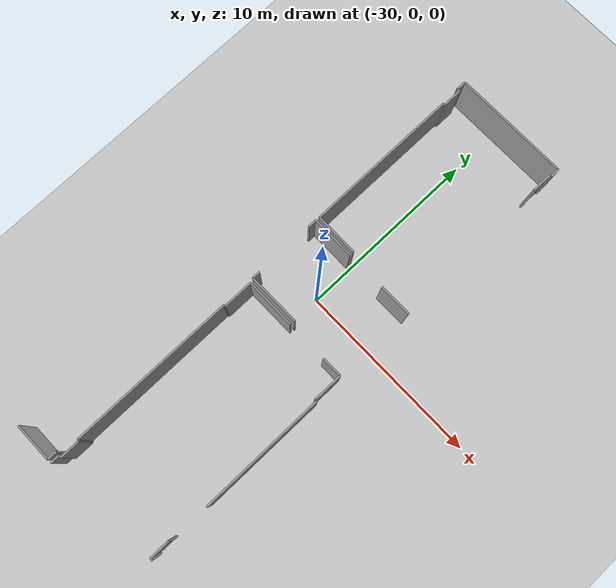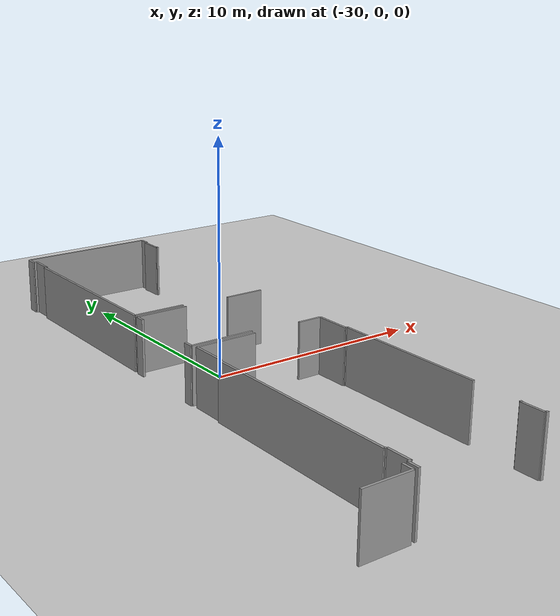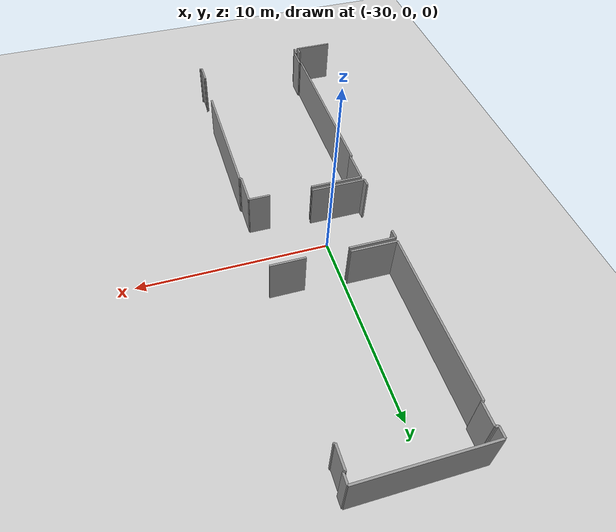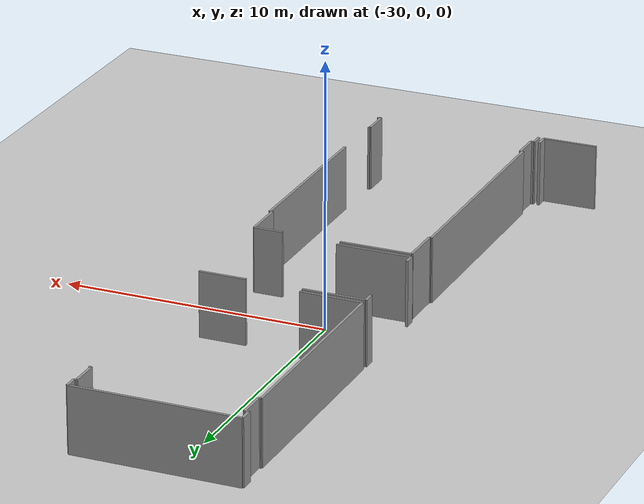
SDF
<sdf version="1.6">
 <world name="default">
  <model name="ground_plane">
   <static>1</static>
   <link name="link">
    <collision name="collision">
     <geometry><plane><normal>0 0 1</normal><size>100 100</size></plane></geometry>
     <surface><friction><ode><mu>100</mu><mu2>50</mu2></ode></friction></surface>
    </collision>
    <visual name="visual">
     <cast_shadows>0</cast_shadows>
     <geometry><plane><normal>0 0 1</normal><size>100 100</size></plane></geometry>
     <material>
      <script><uri>file://media/materials/scripts/gazebo.material</uri><name>Gazebo/Grey</name></script>
     </material>
    </visual>
   </link>
  </model>
  <model name="0510040946_A-40">
   <static>1</static>
   <link name="Wall_29">
    <collision name="Wall_29_Collision">
     <geometry><box><size>0.491195140047 0.1 2.5</size></box></geometry>
     <pose>0.245597570024 0 1.25 0 0 0</pose>
    </collision>
    <visual name="Wall_29_Visual">
     <pose>0.245597570024 0 1.25 0 0 0</pose>
     <geometry><box><size>0.491195140047 0.1 2.5</size></box></geometry>
     <material>
      <script><uri>file://media/materials/scripts/gazebo.material</uri><name>Gazebo/Grey</name></script>
      <ambient>1 1 1 1</ambient>
     </material>
    </visual>
    <pose>25.5995992314 -26.1796990431 0 0 0 -1.57079632679</pose>
   </link>
   <link name="Wall_30">
    <collision name="Wall_30_Collision">
     <geometry><box><size>2.06928476762 0.1 2.5</size></box></geometry>
     <pose>1.03464238381 0 1.25 0 0 0</pose>
    </collision>
    <visual name="Wall_30_Visual">
     <pose>1.03464238381 0 1.25 0 0 0</pose>
     <geometry><box><size>2.06928476762 0.1 2.5</size></box></geometry>
     <material>
      <script><uri>file://media/materials/scripts/gazebo.material</uri><name>Gazebo/Grey</name></script>
      <ambient>1 1 1 1</ambient>
     </material>
    </visual>
    <pose>25.5995992314 -26.6708941831 0 0 0 3.14159265359</pose>
   </link>
   <link name="Wall_34">
    <collision name="Wall_34_Collision">
     <geometry><box><size>0.419031433699 0.1 2.5</size></box></geometry>
     <pose>0.209515716849 0 1.25 0 0 0</pose>
    </collision>
    <visual name="Wall_34_Visual">
     <pose>0.209515716849 0 1.25 0 0 0</pose>
     <geometry><box><size>0.419031433699 0.1 2.5</size></box></geometry>
     <material>
      <script><uri>file://media/materials/scripts/gazebo.material</uri><name>Gazebo/Grey</name></script>
      <ambient>1 1 1 1</ambient>
     </material>
    </visual>
    <pose>25.8424700533 -14.3075645066 0 0 0 1.57079632679</pose>
   </link>
   <link name="Wall_35">
    <collision name="Wall_35_Collision">
     <geometry><box><size>0.452132887753 0.1 2.5</size></box></geometry>
     <pose>0.226066443877 0 1.25 0 0 0</pose>
    </collision>
    <visual name="Wall_35_Visual">
     <pose>0.226066443877 0 1.25 0 0 0</pose>
     <geometry><box><size>0.452132887753 0.1 2.5</size></box></geometry>
     <material>
      <script><uri>file://media/materials/scripts/gazebo.material</uri><name>Gazebo/Grey</name></script>
      <ambient>1 1 1 1</ambient>
     </material>
    </visual>
    <pose>25.8424700533 -10.6792139356 0 0 0 1.57079632679</pose>
   </link>
   <link name="Wall_36">
    <collision name="Wall_36_Collision">
     <geometry><box><size>2.35996880093 0.1 2.5</size></box></geometry>
     <pose>1.17998440046 0 1.25 0 0 0</pose>
    </collision>
    <visual name="Wall_36_Visual">
     <pose>1.17998440046 0 1.25 0 0 0</pose>
     <geometry><box><size>2.35996880093 0.1 2.5</size></box></geometry>
     <material>
      <script><uri>file://media/materials/scripts/gazebo.material</uri><name>Gazebo/Grey</name></script>
      <ambient>1 1 1 1</ambient>
     </material>
    </visual>
    <pose>25.8424700533 -10.2270810478 0 0 0 0.0</pose>
   </link>
   <link name="Wall_37">
    <collision name="Wall_37_Collision">
     <geometry><box><size>1.78189819718 0.1 2.5</size></box></geometry>
     <pose>0.890949098588 0 1.25 0 0 0</pose>
    </collision>
    <visual name="Wall_37_Visual">
     <pose>0.890949098588 0 1.25 0 0 0</pose>
     <geometry><box><size>1.78189819718 0.1 2.5</size></box></geometry>
     <material>
      <script><uri>file://media/materials/scripts/gazebo.material</uri><name>Gazebo/Grey</name></script>
      <ambient>1 1 1 1</ambient>
     </material>
    </visual>
    <pose>30.3195368333 -10.2270810478 0 0 0 0.0</pose>
   </link>
   <link name="Wall_58">
    <collision name="Wall_58_Collision">
     <geometry><box><size>2.84393694933 0.1 2.5</size></box></geometry>
     <pose>1.42196847466 0 1.25 0 0 0</pose>
    </collision>
    <visual name="Wall_58_Visual">
     <pose>1.42196847466 0 1.25 0 0 0</pose>
     <geometry><box><size>2.84393694933 0.1 2.5</size></box></geometry>
     <material>
      <script><uri>file://media/materials/scripts/gazebo.material</uri><name>Gazebo/Grey</name></script>
      <ambient>1 1 1 1</ambient>
     </material>
    </visual>
    <pose>28.6864049411 -14.3041402183 0 0 0 -3.1403885871</pose>
   </link>
   <link name="Wall_59">
    <collision name="Wall_59_Collision">
     <geometry><box><size>8.41030583968 0.1 2.5</size></box></geometry>
     <pose>4.20515291984 0 1.25 0 0 0</pose>
    </collision>
    <visual name="Wall_59_Visual">
     <pose>4.20515291984 0 1.25 0 0 0</pose>
     <geometry><box><size>8.41030583968 0.1 2.5</size></box></geometry>
     <material>
      <script><uri>file://media/materials/scripts/gazebo.material</uri><name>Gazebo/Grey</name></script>
      <ambient>1 1 1 1</ambient>
     </material>
    </visual>
    <pose>25.8633962599 -9.99549769495 0 0 0 1.57079632679</pose>
   </link>
   <link name="Wall_60">
    <collision name="Wall_60_Collision">
     <geometry><box><size>0.0967678522737 0.1 2.5</size></box></geometry>
     <pose>0.0483839261368 0 1.25 0 0 0</pose>
    </collision>
    <visual name="Wall_60_Visual">
     <pose>0.0483839261368 0 1.25 0 0 0</pose>
     <geometry><box><size>0.0967678522737 0.1 2.5</size></box></geometry>
     <material>
      <script><uri>file://media/materials/scripts/gazebo.material</uri><name>Gazebo/Grey</name></script>
      <ambient>1 1 1 1</ambient>
     </material>
    </visual>
    <pose>25.8633962599 -1.58519185527 0 0 0 0.0</pose>
   </link>
   <link name="Wall_61">
    <collision name="Wall_61_Collision">
     <geometry><box><size>1.06216351611 0.1 2.5</size></box></geometry>
     <pose>0.531081758055 0 1.25 0 0 0</pose>
    </collision>
    <visual name="Wall_61_Visual">
     <pose>0.531081758055 0 1.25 0 0 0</pose>
     <geometry><box><size>1.06216351611 0.1 2.5</size></box></geometry>
     <material>
      <script><uri>file://media/materials/scripts/gazebo.material</uri><name>Gazebo/Grey</name></script>
      <ambient>1 1 1 1</ambient>
     </material>
    </visual>
    <pose>25.9601641122 -1.58519185527 0 0 0 1.57079632679</pose>
   </link>
   <link name="Wall_62">
    <collision name="Wall_62_Collision">
     <geometry><box><size>0.150541861925 0.1 2.5</size></box></geometry>
     <pose>0.0752709309625 0 1.25 0 0 0</pose>
    </collision>
    <visual name="Wall_62_Visual">
     <pose>0.0752709309625 0 1.25 0 0 0</pose>
     <geometry><box><size>0.150541861925 0.1 2.5</size></box></geometry>
     <material>
      <script><uri>file://media/materials/scripts/gazebo.material</uri><name>Gazebo/Grey</name></script>
      <ambient>1 1 1 1</ambient>
     </material>
    </visual>
    <pose>25.9601641122 -0.523028339157 0 0 0 3.14159265359</pose>
   </link>
   <link name="Wall_63">
    <collision name="Wall_63_Collision">
     <geometry><box><size>0.514150554544 0.1 2.5</size></box></geometry>
     <pose>0.257075277272 0 1.25 0 0 0</pose>
    </collision>
    <visual name="Wall_63_Visual">
     <pose>0.257075277272 0 1.25 0 0 0</pose>
     <geometry><box><size>0.514150554544 0.1 2.5</size></box></geometry>
     <material>
      <script><uri>file://media/materials/scripts/gazebo.material</uri><name>Gazebo/Grey</name></script>
      <ambient>1 1 1 1</ambient>
     </material>
    </visual>
    <pose>25.8096222503 -0.523028339157 0 0 0 1.57079632679</pose>
   </link>
   <link name="Wall_64">
    <collision name="Wall_64_Collision">
     <geometry><box><size>6.26048688307 0.1 2.5</size></box></geometry>
     <pose>3.13024344154 0 1.25 0 0 0</pose>
    </collision>
    <visual name="Wall_64_Visual">
     <pose>3.13024344154 0 1.25 0 0 0</pose>
     <geometry><box><size>6.26048688307 0.1 2.5</size></box></geometry>
     <material>
      <script><uri>file://media/materials/scripts/gazebo.material</uri><name>Gazebo/Grey</name></script>
      <ambient>1 1 1 1</ambient>
     </material>
    </visual>
    <pose>25.8096222503 -0.00887778461226 0 0 0 0.0</pose>
   </link>
   <link name="Wall_65">
    <collision name="Wall_65_Collision">
     <geometry><box><size>0.489165932136 0.1 2.5</size></box></geometry>
     <pose>0.244582966068 0 1.25 0 0 0</pose>
    </collision>
    <visual name="Wall_65_Visual">
     <pose>0.244582966068 0 1.25 0 0 0</pose>
     <geometry><box><size>0.489165932136 0.1 2.5</size></box></geometry>
     <material>
      <script><uri>file://media/materials/scripts/gazebo.material</uri><name>Gazebo/Grey</name></script>
      <ambient>1 1 1 1</ambient>
     </material>
    </visual>
    <pose>32.0701091333 -0.00887778461226 0 0 0 -1.57079632679</pose>
   </link>
   <link name="Wall_66">
    <collision name="Wall_66_Collision">
     <geometry><box><size>0.0909338795285 0.1 2.5</size></box></geometry>
     <pose>0.0454669397642 0 1.25 0 0 0</pose>
    </collision>
    <visual name="Wall_66_Visual">
     <pose>0.0454669397642 0 1.25 0 0 0</pose>
     <geometry><box><size>0.0909338795285 0.1 2.5</size></box></geometry>
     <material>
      <script><uri>file://media/materials/scripts/gazebo.material</uri><name>Gazebo/Grey</name></script>
      <ambient>1 1 1 1</ambient>
     </material>
    </visual>
    <pose>32.0701091333 -0.498043716748 0 0 0 3.14159265359</pose>
   </link>
   <link name="Wall_67">
    <collision name="Wall_67_Collision">
     <geometry><box><size>1.07522654204 0.1 2.5</size></box></geometry>
     <pose>0.53761327102 0 1.25 0 0 0</pose>
    </collision>
    <visual name="Wall_67_Visual">
     <pose>0.53761327102 0 1.25 0 0 0</pose>
     <geometry><box><size>1.07522654204 0.1 2.5</size></box></geometry>
     <material>
      <script><uri>file://media/materials/scripts/gazebo.material</uri><name>Gazebo/Grey</name></script>
      <ambient>1 1 1 1</ambient>
     </material>
    </visual>
    <pose>31.9791752538 -0.498043716748 0 0 0 -1.57079632679</pose>
   </link>
   <link name="Wall_68">
    <collision name="Wall_68_Collision">
     <geometry><box><size>0.0909338795285 0.1 2.5</size></box></geometry>
     <pose>0.0454669397642 0 1.25 0 0 0</pose>
    </collision>
    <visual name="Wall_68_Visual">
     <pose>0.0454669397642 0 1.25 0 0 0</pose>
     <geometry><box><size>0.0909338795285 0.1 2.5</size></box></geometry>
     <material>
      <script><uri>file://media/materials/scripts/gazebo.material</uri><name>Gazebo/Grey</name></script>
      <ambient>1 1 1 1</ambient>
     </material>
    </visual>
    <pose>31.9791752538 -1.57327025879 0 0 0 0.0</pose>
   </link>
   <link name="Wall_71">
    <collision name="Wall_71_Collision">
     <geometry><box><size>2.34049136573 0.1 2.5</size></box></geometry>
     <pose>1.17024568287 0 1.25 0 0 0</pose>
    </collision>
    <visual name="Wall_71_Visual">
     <pose>1.17024568287 0 1.25 0 0 0</pose>
     <geometry><box><size>2.34049136573 0.1 2.5</size></box></geometry>
     <material>
      <script><uri>file://media/materials/scripts/gazebo.material</uri><name>Gazebo/Grey</name></script>
      <ambient>1 1 1 1</ambient>
     </material>
    </visual>
    <pose>28.2038339347 -10.0113508818 0 0 0 3.13481915796</pose>
   </link>
   <link name="Wall_72">
    <collision name="Wall_72_Collision">
     <geometry><box><size>0.488912281147 0.1 2.5</size></box></geometry>
     <pose>0.244456140573 0 1.25 0 0 0</pose>
    </collision>
    <visual name="Wall_72_Visual">
     <pose>0.244456140573 0 1.25 0 0 0</pose>
     <geometry><box><size>0.488912281147 0.1 2.5</size></box></geometry>
     <material>
      <script><uri>file://media/materials/scripts/gazebo.material</uri><name>Gazebo/Grey</name></script>
      <ambient>1 1 1 1</ambient>
     </material>
    </visual>
    <pose>25.8145684445 -26.6807865717 0 0 0 1.57079632679</pose>
   </link>
   <link name="Wall_73">
    <collision name="Wall_73_Collision">
     <geometry><box><size>0.126825494461 0.1 2.5</size></box></geometry>
     <pose>0.0634127472304 0 1.25 0 0 0</pose>
    </collision>
    <visual name="Wall_73_Visual">
     <pose>0.0634127472304 0 1.25 0 0 0</pose>
     <geometry><box><size>0.126825494461 0.1 2.5</size></box></geometry>
     <material>
      <script><uri>file://media/materials/scripts/gazebo.material</uri><name>Gazebo/Grey</name></script>
      <ambient>1 1 1 1</ambient>
     </material>
    </visual>
    <pose>25.8145684445 -26.1918742906 0 0 0 0.0</pose>
   </link>
   <link name="Wall_74">
    <collision name="Wall_74_Collision">
     <geometry><box><size>1.06267081809 0.1 2.5</size></box></geometry>
     <pose>0.531335409044 0 1.25 0 0 0</pose>
    </collision>
    <visual name="Wall_74_Visual">
     <pose>0.531335409044 0 1.25 0 0 0</pose>
     <geometry><box><size>1.06267081809 0.1 2.5</size></box></geometry>
     <material>
      <script><uri>file://media/materials/scripts/gazebo.material</uri><name>Gazebo/Grey</name></script>
      <ambient>1 1 1 1</ambient>
     </material>
    </visual>
    <pose>25.941393939 -26.1918742906 0 0 0 1.57079632679</pose>
   </link>
   <link name="Wall_75">
    <collision name="Wall_75_Collision">
     <geometry><box><size>0.0877632421669 0.1 2.5</size></box></geometry>
     <pose>0.0438816210835 0 1.25 0 0 0</pose>
    </collision>
    <visual name="Wall_75_Visual">
     <pose>0.0438816210835 0 1.25 0 0 0</pose>
     <geometry><box><size>0.0877632421669 0.1 2.5</size></box></geometry>
     <material>
      <script><uri>file://media/materials/scripts/gazebo.material</uri><name>Gazebo/Grey</name></script>
      <ambient>1 1 1 1</ambient>
     </material>
    </visual>
    <pose>25.941393939 -25.1292034725 0 0 0 3.14159265359</pose>
   </link>
   <link name="Wall_76">
    <collision name="Wall_76_Collision">
     <geometry><box><size>8.96288451905 0.1 2.5</size></box></geometry>
     <pose>4.48144225952 0 1.25 0 0 0</pose>
    </collision>
    <visual name="Wall_76_Visual">
     <pose>4.48144225952 0 1.25 0 0 0</pose>
     <geometry><box><size>8.96288451905 0.1 2.5</size></box></geometry>
     <material>
      <script><uri>file://media/materials/scripts/gazebo.material</uri><name>Gazebo/Grey</name></script>
      <ambient>1 1 1 1</ambient>
     </material>
    </visual>
    <pose>25.8536306968 -25.1292034725 0 0 0 1.57079632679</pose>
   </link>
   <link name="Wall_77">
    <collision name="Wall_77_Collision">
     <geometry><box><size>0.0814219674439 0.1 2.5</size></box></geometry>
     <pose>0.0407109837219 0 1.25 0 0 0</pose>
    </collision>
    <visual name="Wall_77_Visual">
     <pose>0.0407109837219 0 1.25 0 0 0</pose>
     <geometry><box><size>0.0814219674439 0.1 2.5</size></box></geometry>
     <material>
      <script><uri>file://media/materials/scripts/gazebo.material</uri><name>Gazebo/Grey</name></script>
      <ambient>1 1 1 1</ambient>
     </material>
    </visual>
    <pose>25.8536306968 -16.1663189534 0 0 0 0.0</pose>
   </link>
   <link name="Wall_78">
    <collision name="Wall_78_Collision">
     <geometry><box><size>1.61562997394 0.1 2.5</size></box></geometry>
     <pose>0.807814986969 0 1.25 0 0 0</pose>
    </collision>
    <visual name="Wall_78_Visual">
     <pose>0.807814986969 0 1.25 0 0 0</pose>
     <geometry><box><size>1.61562997394 0.1 2.5</size></box></geometry>
     <material>
      <script><uri>file://media/materials/scripts/gazebo.material</uri><name>Gazebo/Grey</name></script>
      <ambient>1 1 1 1</ambient>
     </material>
    </visual>
    <pose>25.9350526643 -16.1663189534 0 0 0 1.57079632679</pose>
   </link>
   <link name="Wall_79">
    <collision name="Wall_79_Collision">
     <geometry><box><size>2.71939225223 0.1 2.5</size></box></geometry>
     <pose>1.35969612612 0 1.25 0 0 0</pose>
    </collision>
    <visual name="Wall_79_Visual">
     <pose>1.35969612612 0 1.25 0 0 0</pose>
     <geometry><box><size>2.71939225223 0.1 2.5</size></box></geometry>
     <material>
      <script><uri>file://media/materials/scripts/gazebo.material</uri><name>Gazebo/Grey</name></script>
      <ambient>1 1 1 1</ambient>
     </material>
    </visual>
    <pose>25.9350526643 -14.5506889795 0 0 0 0.0</pose>
   </link>
   <link name="Wall_80">
    <collision name="Wall_80_Collision">
     <geometry><box><size>1.10274767434 0.1 2.5</size></box></geometry>
     <pose>0.551373837169 0 1.25 0 0 0</pose>
    </collision>
    <visual name="Wall_80_Visual">
     <pose>0.551373837169 0 1.25 0 0 0</pose>
     <geometry><box><size>1.10274767434 0.1 2.5</size></box></geometry>
     <material>
      <script><uri>file://media/materials/scripts/gazebo.material</uri><name>Gazebo/Grey</name></script>
      <ambient>1 1 1 1</ambient>
     </material>
    </visual>
    <pose>30.8560086749 -14.5506889795 0 0 0 0.0</pose>
   </link>
   <link name="Wall_81">
    <collision name="Wall_81_Collision">
     <geometry><box><size>1.57948470802 0.1 2.5</size></box></geometry>
     <pose>0.789742354008 0 1.25 0 0 0</pose>
    </collision>
    <visual name="Wall_81_Visual">
     <pose>0.789742354008 0 1.25 0 0 0</pose>
     <geometry><box><size>1.57948470802 0.1 2.5</size></box></geometry>
     <material>
      <script><uri>file://media/materials/scripts/gazebo.material</uri><name>Gazebo/Grey</name></script>
      <ambient>1 1 1 1</ambient>
     </material>
    </visual>
    <pose>31.9587563492 -14.5506889795 0 0 0 -1.57079632679</pose>
   </link>
   <link name="Wall_82">
    <collision name="Wall_82_Collision">
     <geometry><box><size>0.0925826109565 0.1 2.5</size></box></geometry>
     <pose>0.0462913054782 0 1.25 0 0 0</pose>
    </collision>
    <visual name="Wall_82_Visual">
     <pose>0.0462913054782 0 1.25 0 0 0</pose>
     <geometry><box><size>0.0925826109565 0.1 2.5</size></box></geometry>
     <material>
      <script><uri>file://media/materials/scripts/gazebo.material</uri><name>Gazebo/Grey</name></script>
      <ambient>1 1 1 1</ambient>
     </material>
    </visual>
    <pose>31.9587563492 -16.1301736875 0 0 0 0.0</pose>
   </link>
   <link name="Wall_83">
    <collision name="Wall_83_Collision">
     <geometry><box><size>6.788841893 0.1 2.5</size></box></geometry>
     <pose>3.3944209465 0 1.25 0 0 0</pose>
    </collision>
    <visual name="Wall_83_Visual">
     <pose>3.3944209465 0 1.25 0 0 0</pose>
     <geometry><box><size>6.788841893 0.1 2.5</size></box></geometry>
     <material>
      <script><uri>file://media/materials/scripts/gazebo.material</uri><name>Gazebo/Grey</name></script>
      <ambient>1 1 1 1</ambient>
     </material>
    </visual>
    <pose>32.0513389602 -16.1301736875 0 0 0 -1.57079632679</pose>
   </link>
   <link name="Wall_84">
    <collision name="Wall_84_Collision">
     <geometry><box><size>0.0801537124993 0.1 2.5</size></box></geometry>
     <pose>0.0400768562496 0 1.25 0 0 0</pose>
    </collision>
    <visual name="Wall_84_Visual">
     <pose>0.0400768562496 0 1.25 0 0 0</pose>
     <geometry><box><size>0.0801537124993 0.1 2.5</size></box></geometry>
     <material>
      <script><uri>file://media/materials/scripts/gazebo.material</uri><name>Gazebo/Grey</name></script>
      <ambient>1 1 1 1</ambient>
     </material>
    </visual>
    <pose>32.0513389602 -25.1136039367 0 0 0 3.14159265359</pose>
   </link>
   <link name="Wall_85">
    <collision name="Wall_85_Collision">
     <geometry><box><size>1.05632954336 0.1 2.5</size></box></geometry>
     <pose>0.528164771682 0 1.25 0 0 0</pose>
    </collision>
    <visual name="Wall_85_Visual">
     <pose>0.528164771682 0 1.25 0 0 0</pose>
     <geometry><box><size>1.05632954336 0.1 2.5</size></box></geometry>
     <material>
      <script><uri>file://media/materials/scripts/gazebo.material</uri><name>Gazebo/Grey</name></script>
      <ambient>1 1 1 1</ambient>
     </material>
    </visual>
    <pose>31.9711852477 -25.1136039367 0 0 0 -1.57079632679</pose>
   </link>
   <link name="Wall_86">
    <collision name="Wall_86_Collision">
     <geometry><box><size>0.133420420173 0.1 2.5</size></box></geometry>
     <pose>0.0667102100864 0 1.25 0 0 0</pose>
    </collision>
    <visual name="Wall_86_Visual">
     <pose>0.0667102100864 0 1.25 0 0 0</pose>
     <geometry><box><size>0.133420420173 0.1 2.5</size></box></geometry>
     <material>
      <script><uri>file://media/materials/scripts/gazebo.material</uri><name>Gazebo/Grey</name></script>
      <ambient>1 1 1 1</ambient>
     </material>
    </visual>
    <pose>31.9711852477 -26.16993348 0 0 0 0.0</pose>
   </link>
   <pose>-58.35 12.510471347 0 0 0 0</pose>
  </model>
 </world>
</sdf>
